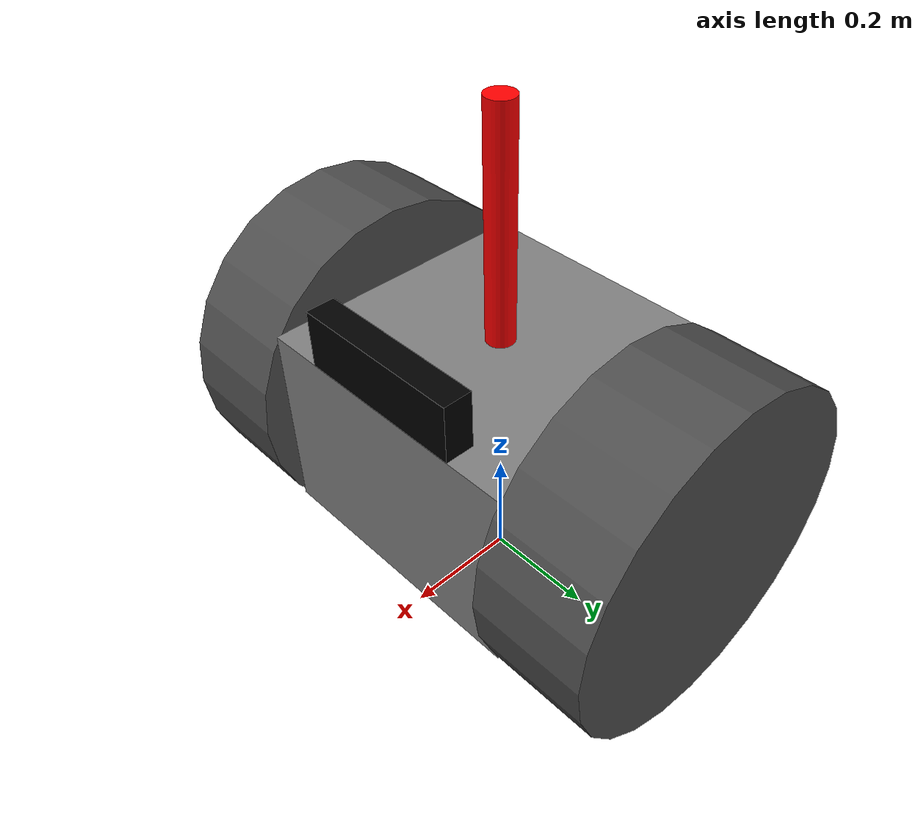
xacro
<?xml version="1.0"?>
<!-- created with Phobos 1.0.1 "Capricious Choutengan" -->
<robot name="searcherbot" xmlns:xacro="http://www.ros.org/wiki/xacro">

  <xacro:include filename="$(find searcherbot_description)/urdf/colors.urdf.xacro"/>
  <xacro:include filename="$(find searcherbot_description)/urdf/sensors/laser.urdf.xacro"/>
  <xacro:include filename="$(find searcherbot_description)/urdf/sensors/camera.urdf.xacro"/>

  <xacro:macro name="set_transmission" params="joint_name">
    <transmission name="${joint_name}_trans">
      <type>transmission_interface/SimpleTransmission</type>
      <joint name="${joint_name}"/>
      <actuator naem="${joint_name}_motor">
        <hardwareInterface>EffortJointInterface</hardwareInterface>
        <mechanicalReduction>1.0</mechanicalReduction>
      </actuator>
    </transmission>
  </xacro:macro>

  <link name="base_footprint">
    <inertial>
      <mass value="0.0001" />
      <origin xyz="0 0 0" />
      <inertia ixx="0.0001" ixy="0.0" ixz="0.0"
          iyy="0.0001" iyz="0.0"
          izz="0.0001" />
    </inertial>
    <visual>
        <origin xyz="0 0 0" rpy="0 0 0" />
        <geometry>
            <box size="0.001 0.001 0.001" />
        </geometry>
    </visual>
  </link>

  <gazebo reference="base_footprint">
    <turnGravityOff>false</turnGravityOff>
  </gazebo>

  <link name="base_link">
    <inertial>
      <origin xyz="0 0 0" rpy="0 0 0"/>
      <mass value="5.0"/>
      <inertia ixx="0.00061" ixy="0" ixz="0" iyy="0.00061" iyz="0" izz="0.0002"/>
    </inertial>
    <visual>
      <origin xyz="0 0 0" rpy="0 0 0"/>
      <geometry>
        <box size="0.5 0.5 0.35"/>
      </geometry>
      <material name="BlueGlow"/>
    </visual>
    <collision name="base">
      <origin xyz="0 0 0" rpy="0 0 0"/>
      <geometry>
        <box size="0.5 0.5 0.35"/>
      </geometry>
    </collision>
  </link>

  <link name="camera_link">
    <inertial>
      <origin xyz="0 0 0" rpy="0 0 0"/>
      <mass value="0.75"/>
      <inertia ixx="0.00625" ixy="0" ixz="0" iyy="0.00078" iyz="0" izz="0.00578"/>
    </inertial>
    <visual>
      <origin xyz="0 0 0" rpy="0 0 0"/>
      <geometry>
        <box size="0.05 0.3 0.1"/>
      </geometry>
      <material name="Black"/>
    </visual>
    <collision name="camera">
      <origin xyz="0 0 0" rpy="0 0 0"/>
      <geometry>
        <box size="0.05 0.3 0.1"/>
      </geometry>
    </collision>
  </link>

  <link name="laser_link">
    <inertial>
      <origin xyz="0 0 0" rpy="0 0 0"/>
      <mass value="1.0"/>
      <inertia ixx="0.01349" ixy="0" ixz="0" iyy="0.01349" iyz="0" izz="0.00031"/>
    </inertial>
    <visual>
      <origin xyz="0 0 0" rpy="0 0 0"/>
      <geometry>
        <cylinder radius="0.025" length="0.4"/>
      </geometry>
      <material name="Red"/>
    </visual>
    <collision name="laser">
      <origin xyz="0 0 0" rpy="0 0 0"/>
      <geometry>
        <cylinder radius="0.025" length="0.4"/>
      </geometry>
    </collision>
  </link>

  <link name="left_wheel_link">
    <inertial>
      <origin xyz="0 0 0" rpy="0 0 0"/>
      <mass value="3.0"/>
      <inertia ixx="0.0775" ixy="0" ixz="0" iyy="0.135" iyz="0" izz="0.0775"/>
    </inertial>
    <visual>
      <origin xyz="0 0 0" rpy="0 0 0"/>
      <geometry>
        <cylinder radius="0.3" length="0.2"/>
      </geometry>
      <material name="DarkGrey"/>
    </visual>
    <collision name="left_wheel">
      <origin xyz="0 0 0" rpy="0 0 0"/>
      <geometry>
        <cylinder radius="0.3" length="0.2"/>
      </geometry>
    </collision>
  </link>

  <link name="right_wheel_link">
    <inertial>
      <origin xyz="0 0 0" rpy="0 0 0"/>
      <mass value="3.0"/>
      <inertia ixx="0.0775" ixy="0" ixz="0" iyy="0.135" iyz="0" izz="0.0775"/>
    </inertial>
    <visual>
      <origin xyz="0 0 0" rpy="0 0 0"/>
      <geometry>
        <cylinder radius="0.3" length="0.2"/>
      </geometry>
      <material name="DarkGrey"/>
    </visual>
    <collision name="right_wheel">
      <origin xyz="0 0 0" rpy="0 0 0"/>
      <geometry>
        <cylinder radius="0.3" length="0.2"/>
      </geometry>
    </collision>
  </link>

  <link name="support_link">
    <inertial>
      <origin xyz="0 0 0" rpy="0 0 0"/>
      <mass value="3.0"/>
      <inertia ixx="0.00625" ixy="0" ixz="0" iyy="0.00625" iyz="0" izz="0.00625"/>
    </inertial>
    <visual>
      <origin xyz="0 0 0" rpy="1.5708 0 0"/>
      <geometry>
        <sphere radius="0.125"/>
      </geometry>
      <material name="Grey"/>
    </visual>
    <collision name="support">
      <origin xyz="0 0 0" rpy="1.5708 0 0"/>
      <geometry>
        <sphere radius="0.125"/>
      </geometry>
    </collision>
  </link>

  <link name="support_link2">
    <inertial>
      <origin xyz="0 0 0" rpy="0 0 0"/>
      <mass value="3.0"/>
      <inertia ixx="0.00625" ixy="0" ixz="0" iyy="0.00625" iyz="0" izz="0.00625"/>
    </inertial>
    <visual>
      <origin xyz="0 0 0" rpy="1.5708 0 0"/>
      <geometry>
        <sphere radius="0.125"/>
      </geometry>
      <material name="Yellow"/>
    </visual>
    <collision name="support2">
      <origin xyz="0 0 0" rpy="1.5708 0 0"/>
      <geometry>
        <sphere radius="0.125"/>
      </geometry>
    </collision>
  </link>

  <joint name="base_footprint_joint" type="fixed">
    <origin xyz="0 0 0.3" rpy="0 0 0" />
    <parent link="base_footprint"/>
    <child link="base_link" />
  </joint>

  <joint name="camera_joint" type="fixed">
    <origin xyz="0.225 0 0.225" rpy="0 0 0"/>
    <parent link="base_link"/>
    <child link="camera_link"/>
  </joint>

  <joint name="laser_joint" type="fixed">
    <origin xyz="0 0 0.375" rpy="0 0 0"/>
    <parent link="base_link"/>
    <child link="laser_link"/>
  </joint>

  <joint name="left_wheel_joint" type="continuous">
    <origin xyz="0 0.35 0" rpy="-1.5708 0 0"/>
    <parent link="base_link"/>
    <child link="left_wheel_link"/>
    <axis xyz="0 0 1.0"/>
    <limit effort="100.0" velocity="5.0"/>
  </joint>

  <joint name="right_wheel_joint" type="continuous">
    <origin xyz="0 -0.35 0" rpy="-1.5708 0 0"/>
    <parent link="base_link"/>
    <child link="right_wheel_link"/>
    <axis xyz="0 0 1.0"/>
    <limit effort="100.0" velocity="5.0"/>
  </joint>

  <joint name="support_joint" type="continuous">
    <origin xyz="0.11 0 -0.175" rpy="-1.5708 0 0"/>
    <parent link="base_link"/>
    <child link="support_link"/>
    <axis xyz="0 0 1.0"/>
    <limit effort="0" velocity="0"/>
  </joint>

  <joint name="support_joint2" type="continuous">
    <origin xyz="-0.15 0 -0.175" rpy="-1.5708 0 0"/>
    <parent link="base_link"/>
    <child link="support_link2"/>
    <axis xyz="0 0 1.0"/>
    <limit effort="0" velocity="0"/>
  </joint>

  <xacro:set_transmission joint_name="left_wheel_joint"/>
  <xacro:set_transmission joint_name="right_wheel_joint"/>

  <!-- Adding Sensors -->
  <xacro:set_laser reference_frame="laser_link"/>
  <xacro:set_camera name="searcherbot_camera" reference_frame="camera_link"/>

  <!-- Differential drive controller  -->
  <gazebo>
    <plugin name="differential_drive_controller" filename="libgazebo_ros_diff_drive.so">
      <legacyMode>true</legacyMode>
      <rosDebugLevel>Debug</rosDebugLevel>
      <publishWheelTF>false</publishWheelTF>
      <robotNamespace>/</robotNamespace>
      <publishTf>1</publishTf>
      <publishWheelJointState>false</publishWheelJointState>
      <alwaysOn>true</alwaysOn>
      <updateRate>100.0</updateRate>
      <leftJoint>left_wheel_joint</leftJoint>
      <rightJoint>right_wheel_joint</rightJoint>
      <wheelSeparation>0.5</wheelSeparation>
      <wheelDiameter>0.6</wheelDiameter>
      <broadcastTF>1</broadcastTF>
      <wheelTorque>30</wheelTorque>
      <wheelAcceleration>1.8</wheelAcceleration>
      <commandTopic>cmd_vel</commandTopic>
      <odometryFrame>odom</odometryFrame>
      <odometryTopic>odom</odometryTopic>
      <robotBaseFrame>base_footprint</robotBaseFrame>

    </plugin>
  </gazebo>

</robot>

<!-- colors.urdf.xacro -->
<robot xmlns:xacro="http://www.ros.org/wiki/xacro">

  <!-- Macros -->
  <xacro:macro name="create_color" params="name value">
    <material name="${name}">
      <color rgba="${value}"/>
    </material>
  </xacro:macro>

  <xacro:macro name="gazebo_color" params="link color">
    <gazebo reference="${link}">
      <material>Gazebo/${color}</material>
    </gazebo>
  </xacro:macro>

  <!-- Setting color for links -->
  <xacro:create_color name="Gray" value="0.5 0.5 0.5 1"/>
  <xacro:create_color name="DarkGray" value="0.1 0.1 0.1 0.5"/>
  <xacro:create_color name="Black" value="0 0 0 1"/>
  <xacro:create_color name="Red" value="1 0 0 1"/>
  <xacro:create_color name="BlueGlow" value="0.5 0.5 0.5 1"/>
  <xacro:create_color name="Yellow" value="1 1 0 1"/>

  <xacro:gazebo_color link="base_link" color="BlueGlow"/>
  <xacro:gazebo_color link="camera_link" color="Black"/>
  <xacro:gazebo_color link="laser_link" color="Red"/>
  <xacro:gazebo_color link="left_wheel_link" color="DarkGrey"/>
  <xacro:gazebo_color link="right_wheel_link" color="DarkGrey"/>
  <xacro:gazebo_color link="support_link" color="Grey"/>
  <xacro:gazebo_color link="support_link2" color="Yellow"/>

</robot>
